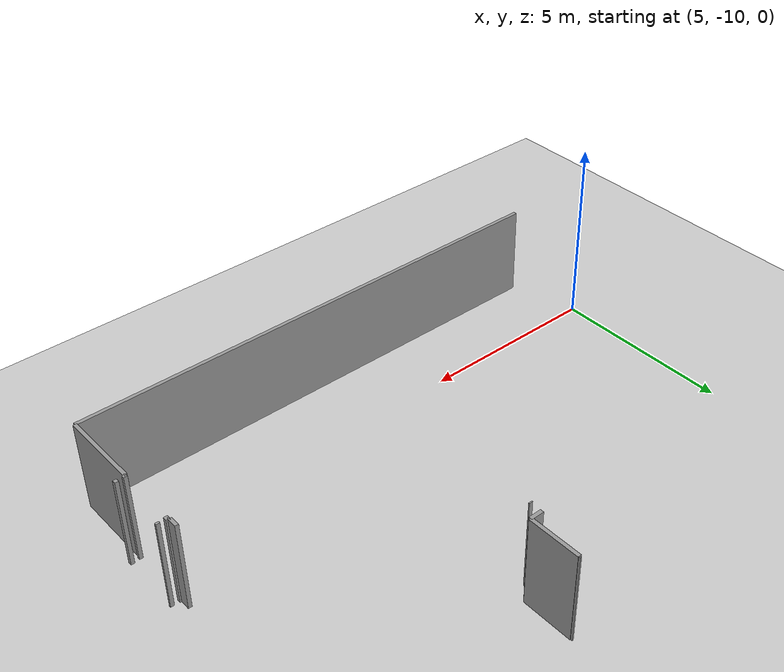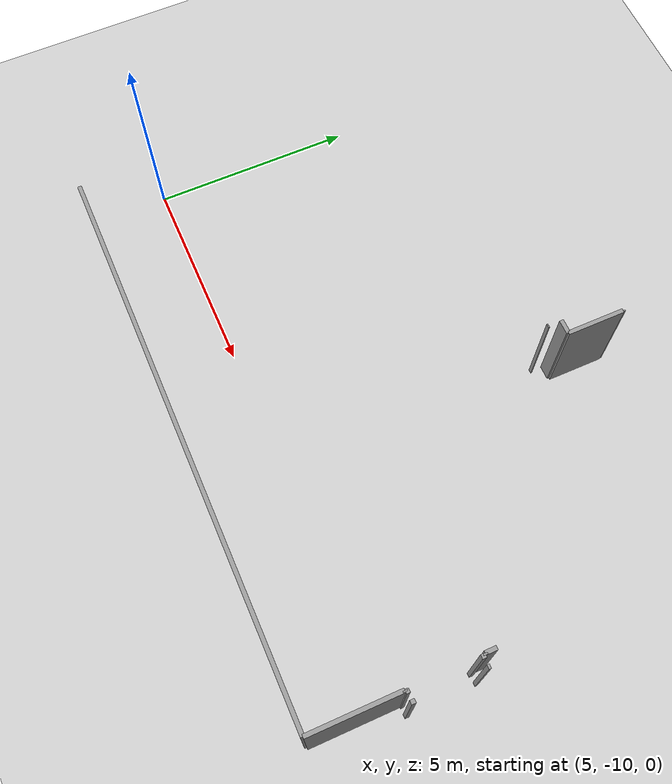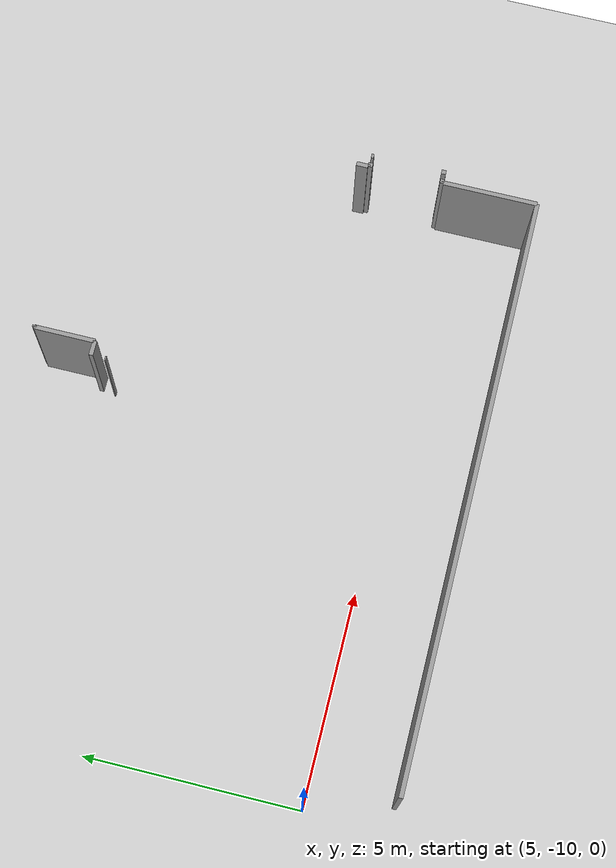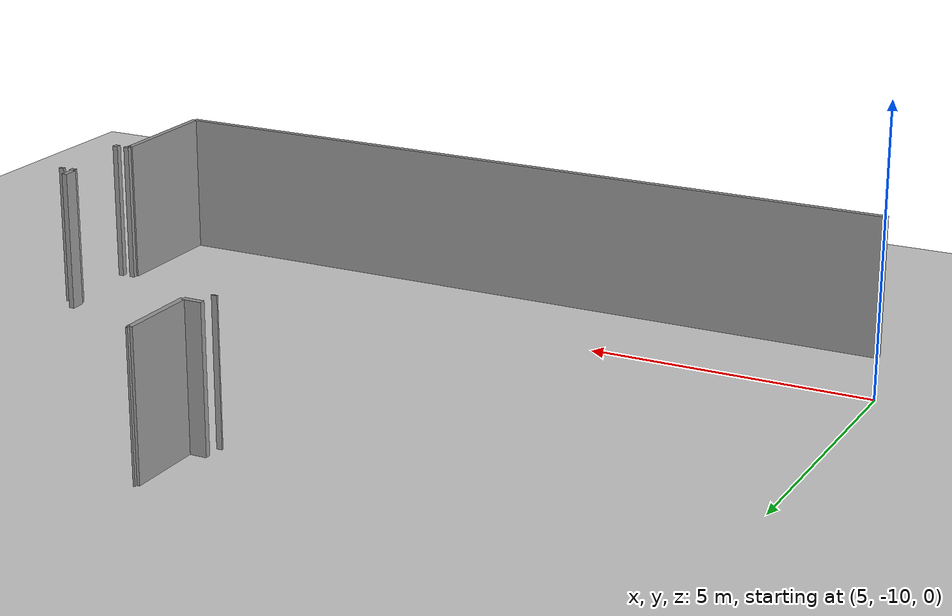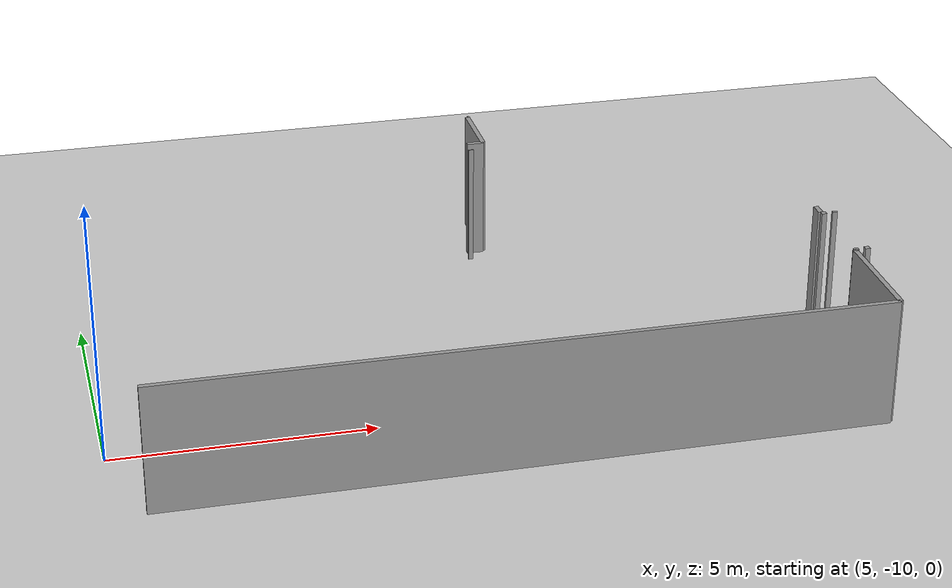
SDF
<sdf version="1.6">
 <world name="default">
  <model name="ground_plane">
   <static>1</static>
   <link name="link">
    <collision name="collision">
     <geometry><plane><normal>0 0 1</normal><size>100 100</size></plane></geometry>
     <surface><friction><ode><mu>100</mu><mu2>50</mu2></ode></friction></surface>
    </collision>
    <visual name="visual">
     <cast_shadows>0</cast_shadows>
     <geometry><plane><normal>0 0 1</normal><size>100 100</size></plane></geometry>
     <material>
      <script><uri>file://media/materials/scripts/gazebo.material</uri><name>Gazebo/Grey</name></script>
     </material>
    </visual>
   </link>
  </model>
  <model name="0510030940_A_40_1_104">
   <static>1</static>
   <link name="Wall_83">
    <collision name="Wall_83_Collision">
     <geometry><box><size>0.0349445969299 0.1 2.5</size></box></geometry>
     <pose>0.017472298465 0 1.25 0 0 0</pose>
    </collision>
    <visual name="Wall_83_Visual">
     <pose>0.017472298465 0 1.25 0 0 0</pose>
     <geometry><box><size>0.0349445969299 0.1 2.5</size></box></geometry>
     <material>
      <script><uri>file://media/materials/scripts/gazebo.material</uri><name>Gazebo/Grey</name></script>
      <ambient>1 1 1 1</ambient>
     </material>
    </visual>
    <pose>37.4249008844 -13.7183592559 0 0 0 3.14159265359</pose>
   </link>
   <link name="Wall_84">
    <collision name="Wall_84_Collision">
     <geometry><box><size>1.39409881061 0.1 2.5</size></box></geometry>
     <pose>0.697049405306 0 1.25 0 0 0</pose>
    </collision>
    <visual name="Wall_84_Visual">
     <pose>0.697049405306 0 1.25 0 0 0</pose>
     <geometry><box><size>1.39409881061 0.1 2.5</size></box></geometry>
     <material>
      <script><uri>file://media/materials/scripts/gazebo.material</uri><name>Gazebo/Grey</name></script>
      <ambient>1 1 1 1</ambient>
     </material>
    </visual>
    <pose>37.3899562875 -13.7183592559 0 0 0 -1.57079632679</pose>
   </link>
   <link name="Wall_85">
    <collision name="Wall_85_Collision">
     <geometry><box><size>0.339280268375 0.1 2.5</size></box></geometry>
     <pose>0.169640134187 0 1.25 0 0 0</pose>
    </collision>
    <visual name="Wall_85_Visual">
     <pose>0.169640134187 0 1.25 0 0 0</pose>
     <geometry><box><size>0.339280268375 0.1 2.5</size></box></geometry>
     <material>
      <script><uri>file://media/materials/scripts/gazebo.material</uri><name>Gazebo/Grey</name></script>
      <ambient>1 1 1 1</ambient>
     </material>
    </visual>
    <pose>37.3899562875 -15.1124580665 0 0 0 3.14159265359</pose>
   </link>
   <link name="Wall_108">
    <collision name="Wall_108_Collision">
     <geometry><box><size>0.0287181051133 0.1 2.5</size></box></geometry>
     <pose>0.0143590525567 0 1.25 0 0 0</pose>
    </collision>
    <visual name="Wall_108_Visual">
     <pose>0.0143590525567 0 1.25 0 0 0</pose>
     <geometry><box><size>0.0287181051133 0.1 2.5</size></box></geometry>
     <material>
      <script><uri>file://media/materials/scripts/gazebo.material</uri><name>Gazebo/Grey</name></script>
      <ambient>1 1 1 1</ambient>
     </material>
    </visual>
    <pose>37.0537257294 -15.4328047169 0 0 0 -1.57079632679</pose>
   </link>
   <link name="Wall_112">
    <collision name="Wall_112_Collision">
     <geometry><box><size>0.267230863068 0.1 2.5</size></box></geometry>
     <pose>0.133615431534 0 1.25 0 0 0</pose>
    </collision>
    <visual name="Wall_112_Visual">
     <pose>0.133615431534 0 1.25 0 0 0</pose>
     <geometry><box><size>0.267230863068 0.1 2.5</size></box></geometry>
     <material>
      <script><uri>file://media/materials/scripts/gazebo.material</uri><name>Gazebo/Grey</name></script>
      <ambient>1 1 1 1</ambient>
     </material>
    </visual>
    <pose>42.9616498933 -19.7256531463 0 0 0 -1.57079632679</pose>
   </link>
   <link name="Wall_113">
    <collision name="Wall_113_Collision">
     <geometry><box><size>0.0412981600081 0.1 2.5</size></box></geometry>
     <pose>0.0206490800041 0 1.25 0 0 0</pose>
    </collision>
    <visual name="Wall_113_Visual">
     <pose>0.0206490800041 0 1.25 0 0 0</pose>
     <geometry><box><size>0.0412981600081 0.1 2.5</size></box></geometry>
     <material>
      <script><uri>file://media/materials/scripts/gazebo.material</uri><name>Gazebo/Grey</name></script>
      <ambient>1 1 1 1</ambient>
     </material>
    </visual>
    <pose>42.9616498933 -19.9928840094 0 0 0 0.0</pose>
   </link>
   <link name="Wall_114">
    <collision name="Wall_114_Collision">
     <geometry><box><size>0.101148724205 0.1 2.5</size></box></geometry>
     <pose>0.0505743621023 0 1.25 0 0 0</pose>
    </collision>
    <visual name="Wall_114_Visual">
     <pose>0.0505743621023 0 1.25 0 0 0</pose>
     <geometry><box><size>0.101148724205 0.1 2.5</size></box></geometry>
     <material>
      <script><uri>file://media/materials/scripts/gazebo.material</uri><name>Gazebo/Grey</name></script>
      <ambient>1 1 1 1</ambient>
     </material>
    </visual>
    <pose>43.0029480533 -19.9928840094 0 0 0 -1.57079632679</pose>
   </link>
   <link name="Wall_115">
    <collision name="Wall_115_Collision">
     <geometry><box><size>0.0831046050625 0.1 2.5</size></box></geometry>
     <pose>0.0415523025313 0 1.25 0 0 0</pose>
    </collision>
    <visual name="Wall_115_Visual">
     <pose>0.0415523025313 0 1.25 0 0 0</pose>
     <geometry><box><size>0.0831046050625 0.1 2.5</size></box></geometry>
     <material>
      <script><uri>file://media/materials/scripts/gazebo.material</uri><name>Gazebo/Grey</name></script>
      <ambient>1 1 1 1</ambient>
     </material>
    </visual>
    <pose>43.0029480533 -21.6675561655 0 0 0 -1.57079632679</pose>
   </link>
   <link name="Wall_116">
    <collision name="Wall_116_Collision">
     <geometry><box><size>0.0312595303446 0.1 2.5</size></box></geometry>
     <pose>0.0156297651723 0 1.25 0 0 0</pose>
    </collision>
    <visual name="Wall_116_Visual">
     <pose>0.0156297651723 0 1.25 0 0 0</pose>
     <geometry><box><size>0.0312595303446 0.1 2.5</size></box></geometry>
     <material>
      <script><uri>file://media/materials/scripts/gazebo.material</uri><name>Gazebo/Grey</name></script>
      <ambient>1 1 1 1</ambient>
     </material>
    </visual>
    <pose>43.0029480533 -21.7506607706 0 0 0 3.14159265359</pose>
   </link>
   <link name="Wall_117">
    <collision name="Wall_117_Collision">
     <geometry><box><size>2.16986886246 0.1 2.5</size></box></geometry>
     <pose>1.08493443123 0 1.25 0 0 0</pose>
    </collision>
    <visual name="Wall_117_Visual">
     <pose>1.08493443123 0 1.25 0 0 0</pose>
     <geometry><box><size>2.16986886246 0.1 2.5</size></box></geometry>
     <material>
      <script><uri>file://media/materials/scripts/gazebo.material</uri><name>Gazebo/Grey</name></script>
      <ambient>1 1 1 1</ambient>
     </material>
    </visual>
    <pose>42.9716885229 -21.7506607706 0 0 0 -1.57079632679</pose>
   </link>
   <link name="Wall_118">
    <collision name="Wall_118_Collision">
     <geometry><box><size>13.6820175177 0.1 2.5</size></box></geometry>
     <pose>6.84100875883 0 1.25 0 0 0</pose>
    </collision>
    <visual name="Wall_118_Visual">
     <pose>6.84100875883 0 1.25 0 0 0</pose>
     <geometry><box><size>13.6820175177 0.1 2.5</size></box></geometry>
     <material>
      <script><uri>file://media/materials/scripts/gazebo.material</uri><name>Gazebo/Grey</name></script>
      <ambient>1 1 1 1</ambient>
     </material>
    </visual>
    <pose>42.9716885229 -23.920529633 0 0 0 3.14128616723</pose>
   </link>
   <link name="Wall_130">
    <collision name="Wall_130_Collision">
     <geometry><box><size>0.103308935651 0.1 2.5</size></box></geometry>
     <pose>0.0516544678256 0 1.25 0 0 0</pose>
    </collision>
    <visual name="Wall_130_Visual">
     <pose>0.0516544678256 0 1.25 0 0 0</pose>
     <geometry><box><size>0.103308935651 0.1 2.5</size></box></geometry>
     <material>
      <script><uri>file://media/materials/scripts/gazebo.material</uri><name>Gazebo/Grey</name></script>
      <ambient>1 1 1 1</ambient>
     </material>
    </visual>
    <pose>43.2300243977 -21.750406628 0 0 0 1.57079632679</pose>
   </link>
   <link name="Wall_131">
    <collision name="Wall_131_Collision">
     <geometry><box><size>0.0578174240114 0.1 2.5</size></box></geometry>
     <pose>0.0289087120057 0 1.25 0 0 0</pose>
    </collision>
    <visual name="Wall_131_Visual">
     <pose>0.0289087120057 0 1.25 0 0 0</pose>
     <geometry><box><size>0.0578174240114 0.1 2.5</size></box></geometry>
     <material>
      <script><uri>file://media/materials/scripts/gazebo.material</uri><name>Gazebo/Grey</name></script>
      <ambient>1 1 1 1</ambient>
     </material>
    </visual>
    <pose>43.2300243977 -20.0676019112 0 0 0 1.57079632679</pose>
   </link>
   <pose>-23.75 11.9814577615 0 0 0 0</pose>
  </model>
 </world>
</sdf>
